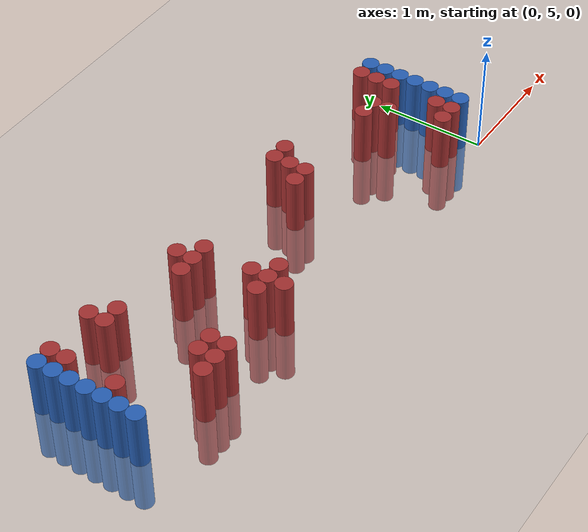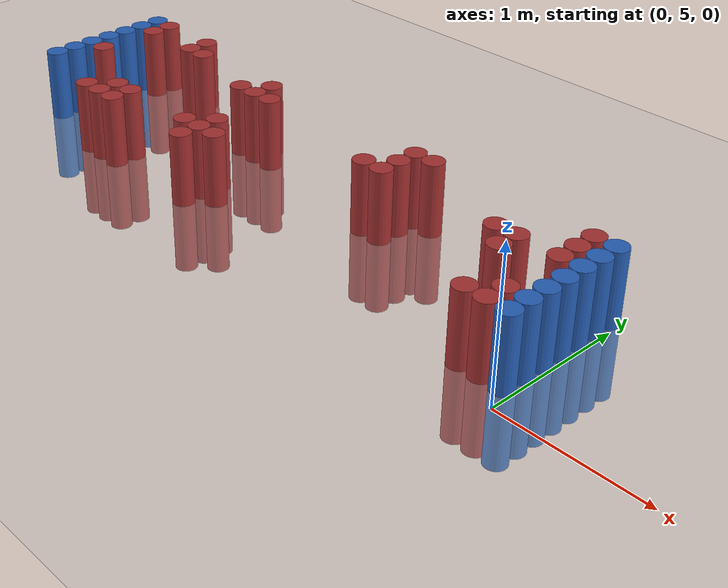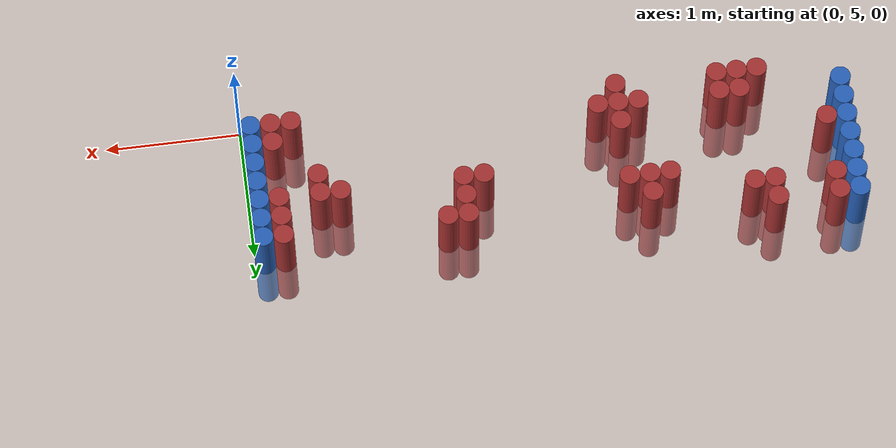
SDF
<sdf version="1.6">
 <world name="default">
  <model name="ground_plane">
   <static>1</static>
   <link name="link">
    <collision name="collision">
     <geometry><plane><normal>0 0 1</normal><size>100 100</size></plane></geometry>
     <surface><friction><ode><mu>100</mu><mu2>50</mu2></ode></friction></surface>
    </collision>
    <visual name="visual">
     <cast_shadows>0</cast_shadows>
     <geometry><plane><normal>0 0 1</normal><size>100 100</size></plane></geometry>
     <material>
      <script><uri>file://media/materials/scripts/gazebo.material</uri><name>Gazebo/Grey</name></script>
     </material>
    </visual>
   </link>
  </model>
  <model name="unit_cylinder_97">
   <static>1</static>
   <pose>-4.425000 5.325000 0.000000 0.000000 0.000000 0.000000</pose>
   <link name="link">
    <inertial>
     <mass>1</mass>
     <inertia><ixx>0.145833</ixx><ixy>0</ixy><ixz>0</ixz><iyy>0.145833</iyy><iyz>0</iyz><izz>0.125</izz></inertia>
    </inertial>
    <collision name="collision">
     <geometry><cylinder><radius>0.075000</radius><length>1</length></cylinder></geometry>
    </collision>
    <visual name="visual">
     <geometry><cylinder><radius>0.075000</radius><length>1</length></cylinder></geometry>
     <material>
      <ambient>0.152000 0.379000 0.720000 1</ambient>
      <diffuse>0.152000 0.379000 0.720000 1</diffuse>
     </material>
     <material>
      <script><name>Gazebo/Grey</name><uri>file://media/materials/scripts/gazebo.material</uri></script>
     </material>
    </visual>
   </link>
  </model>
  <model name="unit_cylinder_98">
   <static>1</static>
   <pose>-4.425000 5.475000 0.000000 0.000000 0.000000 0.000000</pose>
   <link name="link">
    <inertial>
     <mass>1</mass>
     <inertia><ixx>0.145833</ixx><ixy>0</ixy><ixz>0</ixz><iyy>0.145833</iyy><iyz>0</iyz><izz>0.125</izz></inertia>
    </inertial>
    <collision name="collision">
     <geometry><cylinder><radius>0.075000</radius><length>1</length></cylinder></geometry>
    </collision>
    <visual name="visual">
     <geometry><cylinder><radius>0.075000</radius><length>1</length></cylinder></geometry>
     <material>
      <ambient>0.152000 0.379000 0.720000 1</ambient>
      <diffuse>0.152000 0.379000 0.720000 1</diffuse>
     </material>
     <material>
      <script><name>Gazebo/Grey</name><uri>file://media/materials/scripts/gazebo.material</uri></script>
     </material>
    </visual>
   </link>
  </model>
  <model name="unit_cylinder_99">
   <static>1</static>
   <pose>-4.425000 5.625000 0.000000 0.000000 0.000000 0.000000</pose>
   <link name="link">
    <inertial>
     <mass>1</mass>
     <inertia><ixx>0.145833</ixx><ixy>0</ixy><ixz>0</ixz><iyy>0.145833</iyy><iyz>0</iyz><izz>0.125</izz></inertia>
    </inertial>
    <collision name="collision">
     <geometry><cylinder><radius>0.075000</radius><length>1</length></cylinder></geometry>
    </collision>
    <visual name="visual">
     <geometry><cylinder><radius>0.075000</radius><length>1</length></cylinder></geometry>
     <material>
      <ambient>0.152000 0.379000 0.720000 1</ambient>
      <diffuse>0.152000 0.379000 0.720000 1</diffuse>
     </material>
     <material>
      <script><name>Gazebo/Grey</name><uri>file://media/materials/scripts/gazebo.material</uri></script>
     </material>
    </visual>
   </link>
  </model>
  <model name="unit_cylinder_100">
   <static>1</static>
   <pose>-4.425000 5.775000 0.000000 0.000000 0.000000 0.000000</pose>
   <link name="link">
    <inertial>
     <mass>1</mass>
     <inertia><ixx>0.145833</ixx><ixy>0</ixy><ixz>0</ixz><iyy>0.145833</iyy><iyz>0</iyz><izz>0.125</izz></inertia>
    </inertial>
    <collision name="collision">
     <geometry><cylinder><radius>0.075000</radius><length>1</length></cylinder></geometry>
    </collision>
    <visual name="visual">
     <geometry><cylinder><radius>0.075000</radius><length>1</length></cylinder></geometry>
     <material>
      <ambient>0.152000 0.379000 0.720000 1</ambient>
      <diffuse>0.152000 0.379000 0.720000 1</diffuse>
     </material>
     <material>
      <script><name>Gazebo/Grey</name><uri>file://media/materials/scripts/gazebo.material</uri></script>
     </material>
    </visual>
   </link>
  </model>
  <model name="unit_cylinder_101">
   <static>1</static>
   <pose>-4.425000 5.925000 0.000000 0.000000 0.000000 0.000000</pose>
   <link name="link">
    <inertial>
     <mass>1</mass>
     <inertia><ixx>0.145833</ixx><ixy>0</ixy><ixz>0</ixz><iyy>0.145833</iyy><iyz>0</iyz><izz>0.125</izz></inertia>
    </inertial>
    <collision name="collision">
     <geometry><cylinder><radius>0.075000</radius><length>1</length></cylinder></geometry>
    </collision>
    <visual name="visual">
     <geometry><cylinder><radius>0.075000</radius><length>1</length></cylinder></geometry>
     <material>
      <ambient>0.152000 0.379000 0.720000 1</ambient>
      <diffuse>0.152000 0.379000 0.720000 1</diffuse>
     </material>
     <material>
      <script><name>Gazebo/Grey</name><uri>file://media/materials/scripts/gazebo.material</uri></script>
     </material>
    </visual>
   </link>
  </model>
  <model name="unit_cylinder_102">
   <static>1</static>
   <pose>-4.425000 6.075000 0.000000 0.000000 0.000000 0.000000</pose>
   <link name="link">
    <inertial>
     <mass>1</mass>
     <inertia><ixx>0.145833</ixx><ixy>0</ixy><ixz>0</ixz><iyy>0.145833</iyy><iyz>0</iyz><izz>0.125</izz></inertia>
    </inertial>
    <collision name="collision">
     <geometry><cylinder><radius>0.075000</radius><length>1</length></cylinder></geometry>
    </collision>
    <visual name="visual">
     <geometry><cylinder><radius>0.075000</radius><length>1</length></cylinder></geometry>
     <material>
      <ambient>0.152000 0.379000 0.720000 1</ambient>
      <diffuse>0.152000 0.379000 0.720000 1</diffuse>
     </material>
     <material>
      <script><name>Gazebo/Grey</name><uri>file://media/materials/scripts/gazebo.material</uri></script>
     </material>
    </visual>
   </link>
  </model>
  <model name="unit_cylinder_103">
   <static>1</static>
   <pose>-4.425000 6.225000 0.000000 0.000000 0.000000 0.000000</pose>
   <link name="link">
    <inertial>
     <mass>1</mass>
     <inertia><ixx>0.145833</ixx><ixy>0</ixy><ixz>0</ixz><iyy>0.145833</iyy><iyz>0</iyz><izz>0.125</izz></inertia>
    </inertial>
    <collision name="collision">
     <geometry><cylinder><radius>0.075000</radius><length>1</length></cylinder></geometry>
    </collision>
    <visual name="visual">
     <geometry><cylinder><radius>0.075000</radius><length>1</length></cylinder></geometry>
     <material>
      <ambient>0.152000 0.379000 0.720000 1</ambient>
      <diffuse>0.152000 0.379000 0.720000 1</diffuse>
     </material>
     <material>
      <script><name>Gazebo/Grey</name><uri>file://media/materials/scripts/gazebo.material</uri></script>
     </material>
    </visual>
   </link>
  </model>
  <model name="unit_cylinder_126">
   <static>1</static>
   <pose>-4.275000 5.625000 0.000000 0.000000 0.000000 0.000000</pose>
   <link name="link">
    <inertial>
     <mass>1</mass>
     <inertia><ixx>0.145833</ixx><ixy>0</ixy><ixz>0</ixz><iyy>0.145833</iyy><iyz>0</iyz><izz>0.125</izz></inertia>
    </inertial>
    <collision name="collision">
     <geometry><cylinder><radius>0.075000</radius><length>1</length></cylinder></geometry>
    </collision>
    <visual name="visual">
     <geometry><cylinder><radius>0.075000</radius><length>1</length></cylinder></geometry>
     <material>
      <ambient>0.648000 0.192000 0.192000 1</ambient>
      <diffuse>0.648000 0.192000 0.192000 1</diffuse>
     </material>
     <material>
      <script><name>Gazebo/Grey</name><uri>file://media/materials/scripts/gazebo.material</uri></script>
     </material>
    </visual>
   </link>
  </model>
  <model name="unit_cylinder_127">
   <static>1</static>
   <pose>-4.275000 6.075000 0.000000 0.000000 0.000000 0.000000</pose>
   <link name="link">
    <inertial>
     <mass>1</mass>
     <inertia><ixx>0.145833</ixx><ixy>0</ixy><ixz>0</ixz><iyy>0.145833</iyy><iyz>0</iyz><izz>0.125</izz></inertia>
    </inertial>
    <collision name="collision">
     <geometry><cylinder><radius>0.075000</radius><length>1</length></cylinder></geometry>
    </collision>
    <visual name="visual">
     <geometry><cylinder><radius>0.075000</radius><length>1</length></cylinder></geometry>
     <material>
      <ambient>0.648000 0.192000 0.192000 1</ambient>
      <diffuse>0.648000 0.192000 0.192000 1</diffuse>
     </material>
     <material>
      <script><name>Gazebo/Grey</name><uri>file://media/materials/scripts/gazebo.material</uri></script>
     </material>
    </visual>
   </link>
  </model>
  <model name="unit_cylinder_128">
   <static>1</static>
   <pose>-4.275000 6.225000 0.000000 0.000000 0.000000 0.000000</pose>
   <link name="link">
    <inertial>
     <mass>1</mass>
     <inertia><ixx>0.145833</ixx><ixy>0</ixy><ixz>0</ixz><iyy>0.145833</iyy><iyz>0</iyz><izz>0.125</izz></inertia>
    </inertial>
    <collision name="collision">
     <geometry><cylinder><radius>0.075000</radius><length>1</length></cylinder></geometry>
    </collision>
    <visual name="visual">
     <geometry><cylinder><radius>0.075000</radius><length>1</length></cylinder></geometry>
     <material>
      <ambient>0.648000 0.192000 0.192000 1</ambient>
      <diffuse>0.648000 0.192000 0.192000 1</diffuse>
     </material>
     <material>
      <script><name>Gazebo/Grey</name><uri>file://media/materials/scripts/gazebo.material</uri></script>
     </material>
    </visual>
   </link>
  </model>
  <model name="unit_cylinder_151">
   <static>1</static>
   <pose>-3.825000 5.175000 0.000000 0.000000 0.000000 0.000000</pose>
   <link name="link">
    <inertial>
     <mass>1</mass>
     <inertia><ixx>0.145833</ixx><ixy>0</ixy><ixz>0</ixz><iyy>0.145833</iyy><iyz>0</iyz><izz>0.125</izz></inertia>
    </inertial>
    <collision name="collision">
     <geometry><cylinder><radius>0.075000</radius><length>1</length></cylinder></geometry>
    </collision>
    <visual name="visual">
     <geometry><cylinder><radius>0.075000</radius><length>1</length></cylinder></geometry>
     <material>
      <ambient>0.648000 0.192000 0.192000 1</ambient>
      <diffuse>0.648000 0.192000 0.192000 1</diffuse>
     </material>
     <material>
      <script><name>Gazebo/Grey</name><uri>file://media/materials/scripts/gazebo.material</uri></script>
     </material>
    </visual>
   </link>
  </model>
  <model name="unit_cylinder_152">
   <static>1</static>
   <pose>-3.825000 6.075000 0.000000 0.000000 0.000000 0.000000</pose>
   <link name="link">
    <inertial>
     <mass>1</mass>
     <inertia><ixx>0.145833</ixx><ixy>0</ixy><ixz>0</ixz><iyy>0.145833</iyy><iyz>0</iyz><izz>0.125</izz></inertia>
    </inertial>
    <collision name="collision">
     <geometry><cylinder><radius>0.075000</radius><length>1</length></cylinder></geometry>
    </collision>
    <visual name="visual">
     <geometry><cylinder><radius>0.075000</radius><length>1</length></cylinder></geometry>
     <material>
      <ambient>0.648000 0.192000 0.192000 1</ambient>
      <diffuse>0.648000 0.192000 0.192000 1</diffuse>
     </material>
     <material>
      <script><name>Gazebo/Grey</name><uri>file://media/materials/scripts/gazebo.material</uri></script>
     </material>
    </visual>
   </link>
  </model>
  <model name="unit_cylinder_153">
   <static>1</static>
   <pose>-3.825000 6.225000 0.000000 0.000000 0.000000 0.000000</pose>
   <link name="link">
    <inertial>
     <mass>1</mass>
     <inertia><ixx>0.145833</ixx><ixy>0</ixy><ixz>0</ixz><iyy>0.145833</iyy><iyz>0</iyz><izz>0.125</izz></inertia>
    </inertial>
    <collision name="collision">
     <geometry><cylinder><radius>0.075000</radius><length>1</length></cylinder></geometry>
    </collision>
    <visual name="visual">
     <geometry><cylinder><radius>0.075000</radius><length>1</length></cylinder></geometry>
     <material>
      <ambient>0.648000 0.192000 0.192000 1</ambient>
      <diffuse>0.648000 0.192000 0.192000 1</diffuse>
     </material>
     <material>
      <script><name>Gazebo/Grey</name><uri>file://media/materials/scripts/gazebo.material</uri></script>
     </material>
    </visual>
   </link>
  </model>
  <model name="unit_cylinder_158">
   <static>1</static>
   <pose>-3.675000 5.175000 0.000000 0.000000 0.000000 0.000000</pose>
   <link name="link">
    <inertial>
     <mass>1</mass>
     <inertia><ixx>0.145833</ixx><ixy>0</ixy><ixz>0</ixz><iyy>0.145833</iyy><iyz>0</iyz><izz>0.125</izz></inertia>
    </inertial>
    <collision name="collision">
     <geometry><cylinder><radius>0.075000</radius><length>1</length></cylinder></geometry>
    </collision>
    <visual name="visual">
     <geometry><cylinder><radius>0.075000</radius><length>1</length></cylinder></geometry>
     <material>
      <ambient>0.648000 0.192000 0.192000 1</ambient>
      <diffuse>0.648000 0.192000 0.192000 1</diffuse>
     </material>
     <material>
      <script><name>Gazebo/Grey</name><uri>file://media/materials/scripts/gazebo.material</uri></script>
     </material>
    </visual>
   </link>
  </model>
  <model name="unit_cylinder_159">
   <static>1</static>
   <pose>-3.675000 5.325000 0.000000 0.000000 0.000000 0.000000</pose>
   <link name="link">
    <inertial>
     <mass>1</mass>
     <inertia><ixx>0.145833</ixx><ixy>0</ixy><ixz>0</ixz><iyy>0.145833</iyy><iyz>0</iyz><izz>0.125</izz></inertia>
    </inertial>
    <collision name="collision">
     <geometry><cylinder><radius>0.075000</radius><length>1</length></cylinder></geometry>
    </collision>
    <visual name="visual">
     <geometry><cylinder><radius>0.075000</radius><length>1</length></cylinder></geometry>
     <material>
      <ambient>0.648000 0.192000 0.192000 1</ambient>
      <diffuse>0.648000 0.192000 0.192000 1</diffuse>
     </material>
     <material>
      <script><name>Gazebo/Grey</name><uri>file://media/materials/scripts/gazebo.material</uri></script>
     </material>
    </visual>
   </link>
  </model>
  <model name="unit_cylinder_160">
   <static>1</static>
   <pose>-3.675000 6.075000 0.000000 0.000000 0.000000 0.000000</pose>
   <link name="link">
    <inertial>
     <mass>1</mass>
     <inertia><ixx>0.145833</ixx><ixy>0</ixy><ixz>0</ixz><iyy>0.145833</iyy><iyz>0</iyz><izz>0.125</izz></inertia>
    </inertial>
    <collision name="collision">
     <geometry><cylinder><radius>0.075000</radius><length>1</length></cylinder></geometry>
    </collision>
    <visual name="visual">
     <geometry><cylinder><radius>0.075000</radius><length>1</length></cylinder></geometry>
     <material>
      <ambient>0.648000 0.192000 0.192000 1</ambient>
      <diffuse>0.648000 0.192000 0.192000 1</diffuse>
     </material>
     <material>
      <script><name>Gazebo/Grey</name><uri>file://media/materials/scripts/gazebo.material</uri></script>
     </material>
    </visual>
   </link>
  </model>
  <model name="unit_cylinder_164">
   <static>1</static>
   <pose>-3.525000 5.175000 0.000000 0.000000 0.000000 0.000000</pose>
   <link name="link">
    <inertial>
     <mass>1</mass>
     <inertia><ixx>0.145833</ixx><ixy>0</ixy><ixz>0</ixz><iyy>0.145833</iyy><iyz>0</iyz><izz>0.125</izz></inertia>
    </inertial>
    <collision name="collision">
     <geometry><cylinder><radius>0.075000</radius><length>1</length></cylinder></geometry>
    </collision>
    <visual name="visual">
     <geometry><cylinder><radius>0.075000</radius><length>1</length></cylinder></geometry>
     <material>
      <ambient>0.648000 0.192000 0.192000 1</ambient>
      <diffuse>0.648000 0.192000 0.192000 1</diffuse>
     </material>
     <material>
      <script><name>Gazebo/Grey</name><uri>file://media/materials/scripts/gazebo.material</uri></script>
     </material>
    </visual>
   </link>
  </model>
  <model name="unit_cylinder_165">
   <static>1</static>
   <pose>-3.525000 5.325000 0.000000 0.000000 0.000000 0.000000</pose>
   <link name="link">
    <inertial>
     <mass>1</mass>
     <inertia><ixx>0.145833</ixx><ixy>0</ixy><ixz>0</ixz><iyy>0.145833</iyy><iyz>0</iyz><izz>0.125</izz></inertia>
    </inertial>
    <collision name="collision">
     <geometry><cylinder><radius>0.075000</radius><length>1</length></cylinder></geometry>
    </collision>
    <visual name="visual">
     <geometry><cylinder><radius>0.075000</radius><length>1</length></cylinder></geometry>
     <material>
      <ambient>0.648000 0.192000 0.192000 1</ambient>
      <diffuse>0.648000 0.192000 0.192000 1</diffuse>
     </material>
     <material>
      <script><name>Gazebo/Grey</name><uri>file://media/materials/scripts/gazebo.material</uri></script>
     </material>
    </visual>
   </link>
  </model>
  <model name="unit_cylinder_180">
   <static>1</static>
   <pose>-3.075000 5.925000 0.000000 0.000000 0.000000 0.000000</pose>
   <link name="link">
    <inertial>
     <mass>1</mass>
     <inertia><ixx>0.145833</ixx><ixy>0</ixy><ixz>0</ixz><iyy>0.145833</iyy><iyz>0</iyz><izz>0.125</izz></inertia>
    </inertial>
    <collision name="collision">
     <geometry><cylinder><radius>0.075000</radius><length>1</length></cylinder></geometry>
    </collision>
    <visual name="visual">
     <geometry><cylinder><radius>0.075000</radius><length>1</length></cylinder></geometry>
     <material>
      <ambient>0.648000 0.192000 0.192000 1</ambient>
      <diffuse>0.648000 0.192000 0.192000 1</diffuse>
     </material>
     <material>
      <script><name>Gazebo/Grey</name><uri>file://media/materials/scripts/gazebo.material</uri></script>
     </material>
    </visual>
   </link>
  </model>
  <model name="unit_cylinder_183">
   <static>1</static>
   <pose>-2.925000 5.325000 0.000000 0.000000 0.000000 0.000000</pose>
   <link name="link">
    <inertial>
     <mass>1</mass>
     <inertia><ixx>0.145833</ixx><ixy>0</ixy><ixz>0</ixz><iyy>0.145833</iyy><iyz>0</iyz><izz>0.125</izz></inertia>
    </inertial>
    <collision name="collision">
     <geometry><cylinder><radius>0.075000</radius><length>1</length></cylinder></geometry>
    </collision>
    <visual name="visual">
     <geometry><cylinder><radius>0.075000</radius><length>1</length></cylinder></geometry>
     <material>
      <ambient>0.648000 0.192000 0.192000 1</ambient>
      <diffuse>0.648000 0.192000 0.192000 1</diffuse>
     </material>
     <material>
      <script><name>Gazebo/Grey</name><uri>file://media/materials/scripts/gazebo.material</uri></script>
     </material>
    </visual>
   </link>
  </model>
  <model name="unit_cylinder_184">
   <static>1</static>
   <pose>-2.925000 5.925000 0.000000 0.000000 0.000000 0.000000</pose>
   <link name="link">
    <inertial>
     <mass>1</mass>
     <inertia><ixx>0.145833</ixx><ixy>0</ixy><ixz>0</ixz><iyy>0.145833</iyy><iyz>0</iyz><izz>0.125</izz></inertia>
    </inertial>
    <collision name="collision">
     <geometry><cylinder><radius>0.075000</radius><length>1</length></cylinder></geometry>
    </collision>
    <visual name="visual">
     <geometry><cylinder><radius>0.075000</radius><length>1</length></cylinder></geometry>
     <material>
      <ambient>0.648000 0.192000 0.192000 1</ambient>
      <diffuse>0.648000 0.192000 0.192000 1</diffuse>
     </material>
     <material>
      <script><name>Gazebo/Grey</name><uri>file://media/materials/scripts/gazebo.material</uri></script>
     </material>
    </visual>
   </link>
  </model>
  <model name="unit_cylinder_185">
   <static>1</static>
   <pose>-2.925000 6.075000 0.000000 0.000000 0.000000 0.000000</pose>
   <link name="link">
    <inertial>
     <mass>1</mass>
     <inertia><ixx>0.145833</ixx><ixy>0</ixy><ixz>0</ixz><iyy>0.145833</iyy><iyz>0</iyz><izz>0.125</izz></inertia>
    </inertial>
    <collision name="collision">
     <geometry><cylinder><radius>0.075000</radius><length>1</length></cylinder></geometry>
    </collision>
    <visual name="visual">
     <geometry><cylinder><radius>0.075000</radius><length>1</length></cylinder></geometry>
     <material>
      <ambient>0.648000 0.192000 0.192000 1</ambient>
      <diffuse>0.648000 0.192000 0.192000 1</diffuse>
     </material>
     <material>
      <script><name>Gazebo/Grey</name><uri>file://media/materials/scripts/gazebo.material</uri></script>
     </material>
    </visual>
   </link>
  </model>
  <model name="unit_cylinder_188">
   <static>1</static>
   <pose>-2.775000 5.175000 0.000000 0.000000 0.000000 0.000000</pose>
   <link name="link">
    <inertial>
     <mass>1</mass>
     <inertia><ixx>0.145833</ixx><ixy>0</ixy><ixz>0</ixz><iyy>0.145833</iyy><iyz>0</iyz><izz>0.125</izz></inertia>
    </inertial>
    <collision name="collision">
     <geometry><cylinder><radius>0.075000</radius><length>1</length></cylinder></geometry>
    </collision>
    <visual name="visual">
     <geometry><cylinder><radius>0.075000</radius><length>1</length></cylinder></geometry>
     <material>
      <ambient>0.648000 0.192000 0.192000 1</ambient>
      <diffuse>0.648000 0.192000 0.192000 1</diffuse>
     </material>
     <material>
      <script><name>Gazebo/Grey</name><uri>file://media/materials/scripts/gazebo.material</uri></script>
     </material>
    </visual>
   </link>
  </model>
  <model name="unit_cylinder_189">
   <static>1</static>
   <pose>-2.775000 5.325000 0.000000 0.000000 0.000000 0.000000</pose>
   <link name="link">
    <inertial>
     <mass>1</mass>
     <inertia><ixx>0.145833</ixx><ixy>0</ixy><ixz>0</ixz><iyy>0.145833</iyy><iyz>0</iyz><izz>0.125</izz></inertia>
    </inertial>
    <collision name="collision">
     <geometry><cylinder><radius>0.075000</radius><length>1</length></cylinder></geometry>
    </collision>
    <visual name="visual">
     <geometry><cylinder><radius>0.075000</radius><length>1</length></cylinder></geometry>
     <material>
      <ambient>0.648000 0.192000 0.192000 1</ambient>
      <diffuse>0.648000 0.192000 0.192000 1</diffuse>
     </material>
     <material>
      <script><name>Gazebo/Grey</name><uri>file://media/materials/scripts/gazebo.material</uri></script>
     </material>
    </visual>
   </link>
  </model>
  <model name="unit_cylinder_190">
   <static>1</static>
   <pose>-2.775000 5.475000 0.000000 0.000000 0.000000 0.000000</pose>
   <link name="link">
    <inertial>
     <mass>1</mass>
     <inertia><ixx>0.145833</ixx><ixy>0</ixy><ixz>0</ixz><iyy>0.145833</iyy><iyz>0</iyz><izz>0.125</izz></inertia>
    </inertial>
    <collision name="collision">
     <geometry><cylinder><radius>0.075000</radius><length>1</length></cylinder></geometry>
    </collision>
    <visual name="visual">
     <geometry><cylinder><radius>0.075000</radius><length>1</length></cylinder></geometry>
     <material>
      <ambient>0.648000 0.192000 0.192000 1</ambient>
      <diffuse>0.648000 0.192000 0.192000 1</diffuse>
     </material>
     <material>
      <script><name>Gazebo/Grey</name><uri>file://media/materials/scripts/gazebo.material</uri></script>
     </material>
    </visual>
   </link>
  </model>
  <model name="unit_cylinder_191">
   <static>1</static>
   <pose>-2.775000 5.925000 0.000000 0.000000 0.000000 0.000000</pose>
   <link name="link">
    <inertial>
     <mass>1</mass>
     <inertia><ixx>0.145833</ixx><ixy>0</ixy><ixz>0</ixz><iyy>0.145833</iyy><iyz>0</iyz><izz>0.125</izz></inertia>
    </inertial>
    <collision name="collision">
     <geometry><cylinder><radius>0.075000</radius><length>1</length></cylinder></geometry>
    </collision>
    <visual name="visual">
     <geometry><cylinder><radius>0.075000</radius><length>1</length></cylinder></geometry>
     <material>
      <ambient>0.648000 0.192000 0.192000 1</ambient>
      <diffuse>0.648000 0.192000 0.192000 1</diffuse>
     </material>
     <material>
      <script><name>Gazebo/Grey</name><uri>file://media/materials/scripts/gazebo.material</uri></script>
     </material>
    </visual>
   </link>
  </model>
  <model name="unit_cylinder_195">
   <static>1</static>
   <pose>-2.625000 5.325000 0.000000 0.000000 0.000000 0.000000</pose>
   <link name="link">
    <inertial>
     <mass>1</mass>
     <inertia><ixx>0.145833</ixx><ixy>0</ixy><ixz>0</ixz><iyy>0.145833</iyy><iyz>0</iyz><izz>0.125</izz></inertia>
    </inertial>
    <collision name="collision">
     <geometry><cylinder><radius>0.075000</radius><length>1</length></cylinder></geometry>
    </collision>
    <visual name="visual">
     <geometry><cylinder><radius>0.075000</radius><length>1</length></cylinder></geometry>
     <material>
      <ambient>0.648000 0.192000 0.192000 1</ambient>
      <diffuse>0.648000 0.192000 0.192000 1</diffuse>
     </material>
     <material>
      <script><name>Gazebo/Grey</name><uri>file://media/materials/scripts/gazebo.material</uri></script>
     </material>
    </visual>
   </link>
  </model>
  <model name="unit_cylinder_222">
   <static>1</static>
   <pose>-1.725000 5.775000 0.000000 0.000000 0.000000 0.000000</pose>
   <link name="link">
    <inertial>
     <mass>1</mass>
     <inertia><ixx>0.145833</ixx><ixy>0</ixy><ixz>0</ixz><iyy>0.145833</iyy><iyz>0</iyz><izz>0.125</izz></inertia>
    </inertial>
    <collision name="collision">
     <geometry><cylinder><radius>0.075000</radius><length>1</length></cylinder></geometry>
    </collision>
    <visual name="visual">
     <geometry><cylinder><radius>0.075000</radius><length>1</length></cylinder></geometry>
     <material>
      <ambient>0.648000 0.192000 0.192000 1</ambient>
      <diffuse>0.648000 0.192000 0.192000 1</diffuse>
     </material>
     <material>
      <script><name>Gazebo/Grey</name><uri>file://media/materials/scripts/gazebo.material</uri></script>
     </material>
    </visual>
   </link>
  </model>
  <model name="unit_cylinder_223">
   <static>1</static>
   <pose>-1.575000 5.775000 0.000000 0.000000 0.000000 0.000000</pose>
   <link name="link">
    <inertial>
     <mass>1</mass>
     <inertia><ixx>0.145833</ixx><ixy>0</ixy><ixz>0</ixz><iyy>0.145833</iyy><iyz>0</iyz><izz>0.125</izz></inertia>
    </inertial>
    <collision name="collision">
     <geometry><cylinder><radius>0.075000</radius><length>1</length></cylinder></geometry>
    </collision>
    <visual name="visual">
     <geometry><cylinder><radius>0.075000</radius><length>1</length></cylinder></geometry>
     <material>
      <ambient>0.648000 0.192000 0.192000 1</ambient>
      <diffuse>0.648000 0.192000 0.192000 1</diffuse>
     </material>
     <material>
      <script><name>Gazebo/Grey</name><uri>file://media/materials/scripts/gazebo.material</uri></script>
     </material>
    </visual>
   </link>
  </model>
  <model name="unit_cylinder_224">
   <static>1</static>
   <pose>-1.575000 5.925000 0.000000 0.000000 0.000000 0.000000</pose>
   <link name="link">
    <inertial>
     <mass>1</mass>
     <inertia><ixx>0.145833</ixx><ixy>0</ixy><ixz>0</ixz><iyy>0.145833</iyy><iyz>0</iyz><izz>0.125</izz></inertia>
    </inertial>
    <collision name="collision">
     <geometry><cylinder><radius>0.075000</radius><length>1</length></cylinder></geometry>
    </collision>
    <visual name="visual">
     <geometry><cylinder><radius>0.075000</radius><length>1</length></cylinder></geometry>
     <material>
      <ambient>0.648000 0.192000 0.192000 1</ambient>
      <diffuse>0.648000 0.192000 0.192000 1</diffuse>
     </material>
     <material>
      <script><name>Gazebo/Grey</name><uri>file://media/materials/scripts/gazebo.material</uri></script>
     </material>
    </visual>
   </link>
  </model>
  <model name="unit_cylinder_225">
   <static>1</static>
   <pose>-1.575000 6.075000 0.000000 0.000000 0.000000 0.000000</pose>
   <link name="link">
    <inertial>
     <mass>1</mass>
     <inertia><ixx>0.145833</ixx><ixy>0</ixy><ixz>0</ixz><iyy>0.145833</iyy><iyz>0</iyz><izz>0.125</izz></inertia>
    </inertial>
    <collision name="collision">
     <geometry><cylinder><radius>0.075000</radius><length>1</length></cylinder></geometry>
    </collision>
    <visual name="visual">
     <geometry><cylinder><radius>0.075000</radius><length>1</length></cylinder></geometry>
     <material>
      <ambient>0.648000 0.192000 0.192000 1</ambient>
      <diffuse>0.648000 0.192000 0.192000 1</diffuse>
     </material>
     <material>
      <script><name>Gazebo/Grey</name><uri>file://media/materials/scripts/gazebo.material</uri></script>
     </material>
    </visual>
   </link>
  </model>
  <model name="unit_cylinder_227">
   <static>1</static>
   <pose>-1.425000 6.075000 0.000000 0.000000 0.000000 0.000000</pose>
   <link name="link">
    <inertial>
     <mass>1</mass>
     <inertia><ixx>0.145833</ixx><ixy>0</ixy><ixz>0</ixz><iyy>0.145833</iyy><iyz>0</iyz><izz>0.125</izz></inertia>
    </inertial>
    <collision name="collision">
     <geometry><cylinder><radius>0.075000</radius><length>1</length></cylinder></geometry>
    </collision>
    <visual name="visual">
     <geometry><cylinder><radius>0.075000</radius><length>1</length></cylinder></geometry>
     <material>
      <ambient>0.648000 0.192000 0.192000 1</ambient>
      <diffuse>0.648000 0.192000 0.192000 1</diffuse>
     </material>
     <material>
      <script><name>Gazebo/Grey</name><uri>file://media/materials/scripts/gazebo.material</uri></script>
     </material>
    </visual>
   </link>
  </model>
  <model name="unit_cylinder_234">
   <static>1</static>
   <pose>-0.675000 5.775000 0.000000 0.000000 0.000000 0.000000</pose>
   <link name="link">
    <inertial>
     <mass>1</mass>
     <inertia><ixx>0.145833</ixx><ixy>0</ixy><ixz>0</ixz><iyy>0.145833</iyy><iyz>0</iyz><izz>0.125</izz></inertia>
    </inertial>
    <collision name="collision">
     <geometry><cylinder><radius>0.075000</radius><length>1</length></cylinder></geometry>
    </collision>
    <visual name="visual">
     <geometry><cylinder><radius>0.075000</radius><length>1</length></cylinder></geometry>
     <material>
      <ambient>0.648000 0.192000 0.192000 1</ambient>
      <diffuse>0.648000 0.192000 0.192000 1</diffuse>
     </material>
     <material>
      <script><name>Gazebo/Grey</name><uri>file://media/materials/scripts/gazebo.material</uri></script>
     </material>
    </visual>
   </link>
  </model>
  <model name="unit_cylinder_236">
   <static>1</static>
   <pose>-0.525000 5.625000 0.000000 0.000000 0.000000 0.000000</pose>
   <link name="link">
    <inertial>
     <mass>1</mass>
     <inertia><ixx>0.145833</ixx><ixy>0</ixy><ixz>0</ixz><iyy>0.145833</iyy><iyz>0</iyz><izz>0.125</izz></inertia>
    </inertial>
    <collision name="collision">
     <geometry><cylinder><radius>0.075000</radius><length>1</length></cylinder></geometry>
    </collision>
    <visual name="visual">
     <geometry><cylinder><radius>0.075000</radius><length>1</length></cylinder></geometry>
     <material>
      <ambient>0.648000 0.192000 0.192000 1</ambient>
      <diffuse>0.648000 0.192000 0.192000 1</diffuse>
     </material>
     <material>
      <script><name>Gazebo/Grey</name><uri>file://media/materials/scripts/gazebo.material</uri></script>
     </material>
    </visual>
   </link>
  </model>
  <model name="unit_cylinder_237">
   <static>1</static>
   <pose>-0.525000 5.775000 0.000000 0.000000 0.000000 0.000000</pose>
   <link name="link">
    <inertial>
     <mass>1</mass>
     <inertia><ixx>0.145833</ixx><ixy>0</ixy><ixz>0</ixz><iyy>0.145833</iyy><iyz>0</iyz><izz>0.125</izz></inertia>
    </inertial>
    <collision name="collision">
     <geometry><cylinder><radius>0.075000</radius><length>1</length></cylinder></geometry>
    </collision>
    <visual name="visual">
     <geometry><cylinder><radius>0.075000</radius><length>1</length></cylinder></geometry>
     <material>
      <ambient>0.648000 0.192000 0.192000 1</ambient>
      <diffuse>0.648000 0.192000 0.192000 1</diffuse>
     </material>
     <material>
      <script><name>Gazebo/Grey</name><uri>file://media/materials/scripts/gazebo.material</uri></script>
     </material>
    </visual>
   </link>
  </model>
  <model name="unit_cylinder_241">
   <static>1</static>
   <pose>-0.375000 5.175000 0.000000 0.000000 0.000000 0.000000</pose>
   <link name="link">
    <inertial>
     <mass>1</mass>
     <inertia><ixx>0.145833</ixx><ixy>0</ixy><ixz>0</ixz><iyy>0.145833</iyy><iyz>0</iyz><izz>0.125</izz></inertia>
    </inertial>
    <collision name="collision">
     <geometry><cylinder><radius>0.075000</radius><length>1</length></cylinder></geometry>
    </collision>
    <visual name="visual">
     <geometry><cylinder><radius>0.075000</radius><length>1</length></cylinder></geometry>
     <material>
      <ambient>0.648000 0.192000 0.192000 1</ambient>
      <diffuse>0.648000 0.192000 0.192000 1</diffuse>
     </material>
     <material>
      <script><name>Gazebo/Grey</name><uri>file://media/materials/scripts/gazebo.material</uri></script>
     </material>
    </visual>
   </link>
  </model>
  <model name="unit_cylinder_247">
   <static>1</static>
   <pose>-0.225000 5.175000 0.000000 0.000000 0.000000 0.000000</pose>
   <link name="link">
    <inertial>
     <mass>1</mass>
     <inertia><ixx>0.145833</ixx><ixy>0</ixy><ixz>0</ixz><iyy>0.145833</iyy><iyz>0</iyz><izz>0.125</izz></inertia>
    </inertial>
    <collision name="collision">
     <geometry><cylinder><radius>0.075000</radius><length>1</length></cylinder></geometry>
    </collision>
    <visual name="visual">
     <geometry><cylinder><radius>0.075000</radius><length>1</length></cylinder></geometry>
     <material>
      <ambient>0.648000 0.192000 0.192000 1</ambient>
      <diffuse>0.648000 0.192000 0.192000 1</diffuse>
     </material>
     <material>
      <script><name>Gazebo/Grey</name><uri>file://media/materials/scripts/gazebo.material</uri></script>
     </material>
    </visual>
   </link>
  </model>
  <model name="unit_cylinder_248">
   <static>1</static>
   <pose>-0.225000 5.325000 0.000000 0.000000 0.000000 0.000000</pose>
   <link name="link">
    <inertial>
     <mass>1</mass>
     <inertia><ixx>0.145833</ixx><ixy>0</ixy><ixz>0</ixz><iyy>0.145833</iyy><iyz>0</iyz><izz>0.125</izz></inertia>
    </inertial>
    <collision name="collision">
     <geometry><cylinder><radius>0.075000</radius><length>1</length></cylinder></geometry>
    </collision>
    <visual name="visual">
     <geometry><cylinder><radius>0.075000</radius><length>1</length></cylinder></geometry>
     <material>
      <ambient>0.648000 0.192000 0.192000 1</ambient>
      <diffuse>0.648000 0.192000 0.192000 1</diffuse>
     </material>
     <material>
      <script><name>Gazebo/Grey</name><uri>file://media/materials/scripts/gazebo.material</uri></script>
     </material>
    </visual>
   </link>
  </model>
  <model name="unit_cylinder_249">
   <static>1</static>
   <pose>-0.225000 5.775000 0.000000 0.000000 0.000000 0.000000</pose>
   <link name="link">
    <inertial>
     <mass>1</mass>
     <inertia><ixx>0.145833</ixx><ixy>0</ixy><ixz>0</ixz><iyy>0.145833</iyy><iyz>0</iyz><izz>0.125</izz></inertia>
    </inertial>
    <collision name="collision">
     <geometry><cylinder><radius>0.075000</radius><length>1</length></cylinder></geometry>
    </collision>
    <visual name="visual">
     <geometry><cylinder><radius>0.075000</radius><length>1</length></cylinder></geometry>
     <material>
      <ambient>0.648000 0.192000 0.192000 1</ambient>
      <diffuse>0.648000 0.192000 0.192000 1</diffuse>
     </material>
     <material>
      <script><name>Gazebo/Grey</name><uri>file://media/materials/scripts/gazebo.material</uri></script>
     </material>
    </visual>
   </link>
  </model>
  <model name="unit_cylinder_250">
   <static>1</static>
   <pose>-0.225000 5.925000 0.000000 0.000000 0.000000 0.000000</pose>
   <link name="link">
    <inertial>
     <mass>1</mass>
     <inertia><ixx>0.145833</ixx><ixy>0</ixy><ixz>0</ixz><iyy>0.145833</iyy><iyz>0</iyz><izz>0.125</izz></inertia>
    </inertial>
    <collision name="collision">
     <geometry><cylinder><radius>0.075000</radius><length>1</length></cylinder></geometry>
    </collision>
    <visual name="visual">
     <geometry><cylinder><radius>0.075000</radius><length>1</length></cylinder></geometry>
     <material>
      <ambient>0.648000 0.192000 0.192000 1</ambient>
      <diffuse>0.648000 0.192000 0.192000 1</diffuse>
     </material>
     <material>
      <script><name>Gazebo/Grey</name><uri>file://media/materials/scripts/gazebo.material</uri></script>
     </material>
    </visual>
   </link>
  </model>
  <model name="unit_cylinder_251">
   <static>1</static>
   <pose>-0.225000 6.075000 0.000000 0.000000 0.000000 0.000000</pose>
   <link name="link">
    <inertial>
     <mass>1</mass>
     <inertia><ixx>0.145833</ixx><ixy>0</ixy><ixz>0</ixz><iyy>0.145833</iyy><iyz>0</iyz><izz>0.125</izz></inertia>
    </inertial>
    <collision name="collision">
     <geometry><cylinder><radius>0.075000</radius><length>1</length></cylinder></geometry>
    </collision>
    <visual name="visual">
     <geometry><cylinder><radius>0.075000</radius><length>1</length></cylinder></geometry>
     <material>
      <ambient>0.648000 0.192000 0.192000 1</ambient>
      <diffuse>0.648000 0.192000 0.192000 1</diffuse>
     </material>
     <material>
      <script><name>Gazebo/Grey</name><uri>file://media/materials/scripts/gazebo.material</uri></script>
     </material>
    </visual>
   </link>
  </model>
  <model name="unit_cylinder_260">
   <static>1</static>
   <pose>-0.075000 5.175000 0.000000 0.000000 0.000000 0.000000</pose>
   <link name="link">
    <inertial>
     <mass>1</mass>
     <inertia><ixx>0.145833</ixx><ixy>0</ixy><ixz>0</ixz><iyy>0.145833</iyy><iyz>0</iyz><izz>0.125</izz></inertia>
    </inertial>
    <collision name="collision">
     <geometry><cylinder><radius>0.075000</radius><length>1</length></cylinder></geometry>
    </collision>
    <visual name="visual">
     <geometry><cylinder><radius>0.075000</radius><length>1</length></cylinder></geometry>
     <material>
      <ambient>0.152000 0.379000 0.720000 1</ambient>
      <diffuse>0.152000 0.379000 0.720000 1</diffuse>
     </material>
     <material>
      <script><name>Gazebo/Grey</name><uri>file://media/materials/scripts/gazebo.material</uri></script>
     </material>
    </visual>
   </link>
  </model>
  <model name="unit_cylinder_261">
   <static>1</static>
   <pose>-0.075000 5.325000 0.000000 0.000000 0.000000 0.000000</pose>
   <link name="link">
    <inertial>
     <mass>1</mass>
     <inertia><ixx>0.145833</ixx><ixy>0</ixy><ixz>0</ixz><iyy>0.145833</iyy><iyz>0</iyz><izz>0.125</izz></inertia>
    </inertial>
    <collision name="collision">
     <geometry><cylinder><radius>0.075000</radius><length>1</length></cylinder></geometry>
    </collision>
    <visual name="visual">
     <geometry><cylinder><radius>0.075000</radius><length>1</length></cylinder></geometry>
     <material>
      <ambient>0.152000 0.379000 0.720000 1</ambient>
      <diffuse>0.152000 0.379000 0.720000 1</diffuse>
     </material>
     <material>
      <script><name>Gazebo/Grey</name><uri>file://media/materials/scripts/gazebo.material</uri></script>
     </material>
    </visual>
   </link>
  </model>
  <model name="unit_cylinder_262">
   <static>1</static>
   <pose>-0.075000 5.475000 0.000000 0.000000 0.000000 0.000000</pose>
   <link name="link">
    <inertial>
     <mass>1</mass>
     <inertia><ixx>0.145833</ixx><ixy>0</ixy><ixz>0</ixz><iyy>0.145833</iyy><iyz>0</iyz><izz>0.125</izz></inertia>
    </inertial>
    <collision name="collision">
     <geometry><cylinder><radius>0.075000</radius><length>1</length></cylinder></geometry>
    </collision>
    <visual name="visual">
     <geometry><cylinder><radius>0.075000</radius><length>1</length></cylinder></geometry>
     <material>
      <ambient>0.152000 0.379000 0.720000 1</ambient>
      <diffuse>0.152000 0.379000 0.720000 1</diffuse>
     </material>
     <material>
      <script><name>Gazebo/Grey</name><uri>file://media/materials/scripts/gazebo.material</uri></script>
     </material>
    </visual>
   </link>
  </model>
  <model name="unit_cylinder_263">
   <static>1</static>
   <pose>-0.075000 5.625000 0.000000 0.000000 0.000000 0.000000</pose>
   <link name="link">
    <inertial>
     <mass>1</mass>
     <inertia><ixx>0.145833</ixx><ixy>0</ixy><ixz>0</ixz><iyy>0.145833</iyy><iyz>0</iyz><izz>0.125</izz></inertia>
    </inertial>
    <collision name="collision">
     <geometry><cylinder><radius>0.075000</radius><length>1</length></cylinder></geometry>
    </collision>
    <visual name="visual">
     <geometry><cylinder><radius>0.075000</radius><length>1</length></cylinder></geometry>
     <material>
      <ambient>0.152000 0.379000 0.720000 1</ambient>
      <diffuse>0.152000 0.379000 0.720000 1</diffuse>
     </material>
     <material>
      <script><name>Gazebo/Grey</name><uri>file://media/materials/scripts/gazebo.material</uri></script>
     </material>
    </visual>
   </link>
  </model>
  <model name="unit_cylinder_264">
   <static>1</static>
   <pose>-0.075000 5.775000 0.000000 0.000000 0.000000 0.000000</pose>
   <link name="link">
    <inertial>
     <mass>1</mass>
     <inertia><ixx>0.145833</ixx><ixy>0</ixy><ixz>0</ixz><iyy>0.145833</iyy><iyz>0</iyz><izz>0.125</izz></inertia>
    </inertial>
    <collision name="collision">
     <geometry><cylinder><radius>0.075000</radius><length>1</length></cylinder></geometry>
    </collision>
    <visual name="visual">
     <geometry><cylinder><radius>0.075000</radius><length>1</length></cylinder></geometry>
     <material>
      <ambient>0.152000 0.379000 0.720000 1</ambient>
      <diffuse>0.152000 0.379000 0.720000 1</diffuse>
     </material>
     <material>
      <script><name>Gazebo/Grey</name><uri>file://media/materials/scripts/gazebo.material</uri></script>
     </material>
    </visual>
   </link>
  </model>
  <model name="unit_cylinder_265">
   <static>1</static>
   <pose>-0.075000 5.925000 0.000000 0.000000 0.000000 0.000000</pose>
   <link name="link">
    <inertial>
     <mass>1</mass>
     <inertia><ixx>0.145833</ixx><ixy>0</ixy><ixz>0</ixz><iyy>0.145833</iyy><iyz>0</iyz><izz>0.125</izz></inertia>
    </inertial>
    <collision name="collision">
     <geometry><cylinder><radius>0.075000</radius><length>1</length></cylinder></geometry>
    </collision>
    <visual name="visual">
     <geometry><cylinder><radius>0.075000</radius><length>1</length></cylinder></geometry>
     <material>
      <ambient>0.152000 0.379000 0.720000 1</ambient>
      <diffuse>0.152000 0.379000 0.720000 1</diffuse>
     </material>
     <material>
      <script><name>Gazebo/Grey</name><uri>file://media/materials/scripts/gazebo.material</uri></script>
     </material>
    </visual>
   </link>
  </model>
  <model name="unit_cylinder_266">
   <static>1</static>
   <pose>-0.075000 6.075000 0.000000 0.000000 0.000000 0.000000</pose>
   <link name="link">
    <inertial>
     <mass>1</mass>
     <inertia><ixx>0.145833</ixx><ixy>0</ixy><ixz>0</ixz><iyy>0.145833</iyy><iyz>0</iyz><izz>0.125</izz></inertia>
    </inertial>
    <collision name="collision">
     <geometry><cylinder><radius>0.075000</radius><length>1</length></cylinder></geometry>
    </collision>
    <visual name="visual">
     <geometry><cylinder><radius>0.075000</radius><length>1</length></cylinder></geometry>
     <material>
      <ambient>0.152000 0.379000 0.720000 1</ambient>
      <diffuse>0.152000 0.379000 0.720000 1</diffuse>
     </material>
     <material>
      <script><name>Gazebo/Grey</name><uri>file://media/materials/scripts/gazebo.material</uri></script>
     </material>
    </visual>
   </link>
  </model>
 </world>
</sdf>
